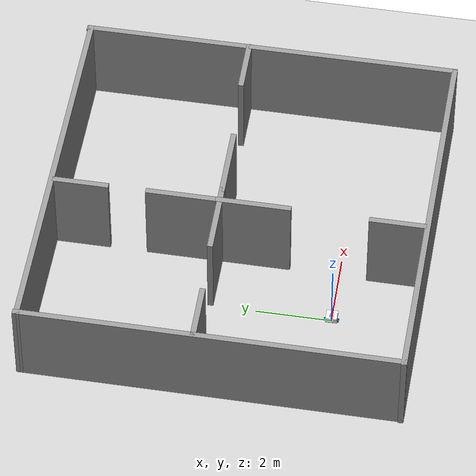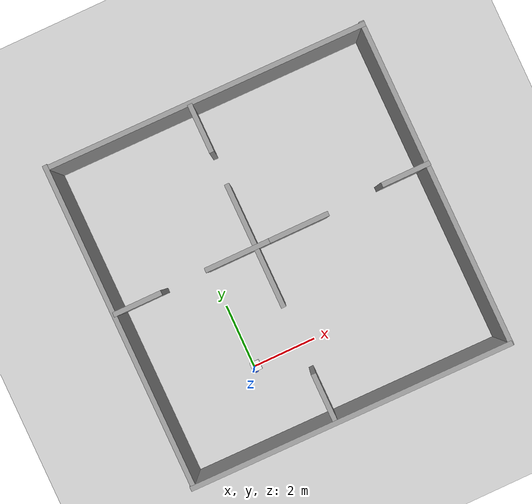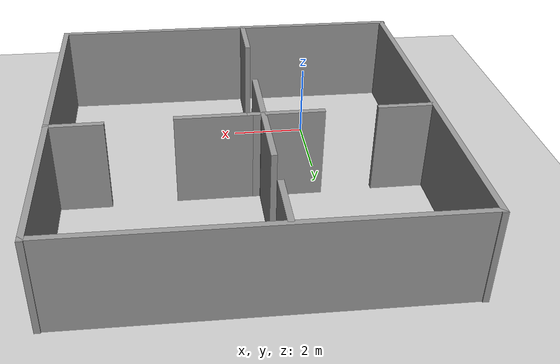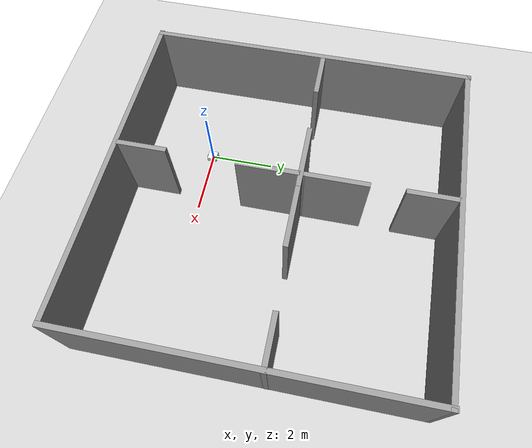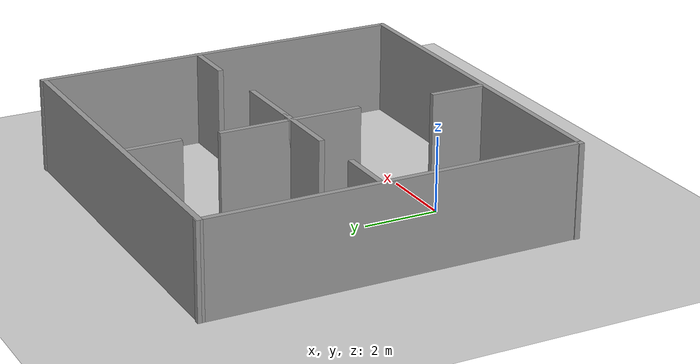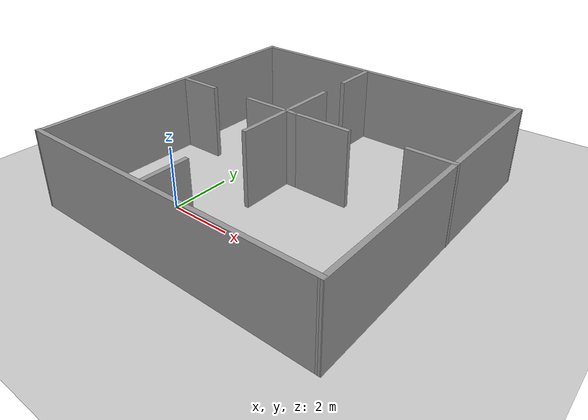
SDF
<sdf version="1.7">
 <world name="default">
  <light name="sun" type="directional">
   <pose>0 0 10 0 -0 0</pose>
   <diffuse>0.8 0.8 0.8 1</diffuse>
   <specular>0.2 0.2 0.2 1</specular>
   <attenuation>
    <range>1000</range>
    <constant>0.9</constant>
    <linear>0.01</linear>
    <quadratic>0.001</quadratic>
   </attenuation>
   <direction>-0.5 0.1 -0.9</direction>
   <spot><inner_angle>0</inner_angle><outer_angle>0</outer_angle><falloff>0</falloff></spot>
  </light>
  <model name="ground_plane">
   <static>1</static>
   <link name="link">
    <collision name="collision">
     <geometry><plane><normal>0 0 1</normal><size>100 100</size></plane></geometry>
     <surface><friction><ode><mu>100</mu><mu2>50</mu2></ode></friction></surface>
    </collision>
    <visual name="visual">
     <cast_shadows>0</cast_shadows>
     <geometry><plane><normal>0 0 1</normal><size>100 100</size></plane></geometry>
     <material>
      <script><uri>file://media/materials/scripts/gazebo.material</uri><name>Gazebo/Grey</name></script>
     </material>
    </visual>
   </link>
  </model>
  <gravity>0 0 -9.8</gravity>
  <magnetic_field>6e-06 2.3e-05 -4.2e-05</magnetic_field>
  <atmosphere type="adiabatic"/>
  <physics type="ode">
   <max_step_size>0.001</max_step_size>
   <real_time_factor>1</real_time_factor>
   <real_time_update_rate>1000</real_time_update_rate>
  </physics>
  <scene><ambient>0.4 0.4 0.4 1</ambient><background>0.7 0.7 0.7 1</background><shadows>1</shadows></scene>
  <audio><device>default</device></audio>
  <spherical_coordinates>
   <surface_model>EARTH_WGS84</surface_model>
   <latitude_deg>0</latitude_deg>
   <longitude_deg>0</longitude_deg>
   <elevation>0</elevation>
   <heading_deg>0</heading_deg>
  </spherical_coordinates>
  <model name="robot_dd">
   <link name="base_link">
    <inertial>
     <pose>0.055714 0 0.078571 0 -0 0</pose>
     <mass>0.7</mass>
     <inertia>
      <ixx>0.0064169</ixx>
      <ixy>0</ixy>
      <ixz>0.00118929</ixz>
      <iyy>0.00745405</iyy>
      <iyz>0</iyz>
      <izz>0.00876214</izz>
     </inertia>
    </inertial>
    <collision name="base_link_fixed_joint_lump__chassis_collision">
     <pose>0.05 0 0.075 0 -0 0</pose>
     <geometry><box><size>0.3 0.3 0.15</size></box></geometry>
    </collision>
    <collision name="base_link_fixed_joint_lump__caster_wheel_collision_1">
     <pose>0.14 0 0 0 -0 0</pose>
     <geometry><sphere><radius>0.05</radius></sphere></geometry>
     <surface><friction><ode><mu>0.001</mu><mu2>0.001</mu2></ode></friction></surface>
    </collision>
    <collision name="base_link_fixed_joint_lump__laser_frame_collision_2">
     <pose>0 0 0.175 0 -0 0</pose>
     <geometry><cylinder><length>0.04</length><radius>0.05</radius></cylinder></geometry>
    </collision>
    <visual name="base_link_fixed_joint_lump__chassis_visual">
     <pose>0.05 0 0.075 0 -0 0</pose>
     <geometry><box><size>0.3 0.3 0.15</size></box></geometry>
     <material>
      <script><name>Gazebo/White</name><uri>file://media/materials/scripts/gazebo.material</uri></script>
     </material>
    </visual>
    <visual name="base_link_fixed_joint_lump__caster_wheel_visual_1">
     <pose>0.14 0 0 0 -0 0</pose>
     <geometry><sphere><radius>0.05</radius></sphere></geometry>
     <material>
      <script><name>Gazebo/Black</name><uri>file://media/materials/scripts/gazebo.material</uri></script>
     </material>
    </visual>
    <visual name="base_link_fixed_joint_lump__laser_frame_visual_2">
     <pose>0 0 0.175 0 -0 0</pose>
     <geometry><cylinder><length>0.04</length><radius>0.05</radius></cylinder></geometry>
     <material>
      <script><name>Gazebo/Red</name><uri>file://media/materials/scripts/gazebo.material</uri></script>
     </material>
    </visual>
    <sensor name="laser" type="ray">
     <visualize>1</visualize>
     <update_rate>10</update_rate>
     <ray>
      <scan>
       <horizontal>
        <samples>360</samples>
        <min_angle>-3.14</min_angle>
        <max_angle>3.14</max_angle>
        <resolution>1</resolution>
       </horizontal>
       <vertical><samples>1</samples><min_angle>0</min_angle><max_angle>0</max_angle></vertical>
      </scan>
      <range><min>0.3</min><max>12</max></range>
     </ray>
     <plugin name="laser_controller" filename="libgazebo_ros_ray_sensor.so">
      <ros><argument>~/out:=scan</argument></ros>
      <output_type>sensor_msgs/LaserScan</output_type>
      <frame_name>laser_frame</frame_name>
     </plugin>
     <pose>0 0 0.175 0 -0 0</pose>
    </sensor>
   </link>
   <joint name="left_wheel_joint" type="revolute">
    <pose relative_to="base_link">0 0.175 0 -1.5708 0 0</pose>
    <parent>base_link</parent>
    <child>left_wheel</child>
    <axis>
     <xyz>0 0 1</xyz>
     <limit><lower>-1e+16</lower><upper>1e+16</upper></limit>
     <dynamics><spring_reference>0</spring_reference><spring_stiffness>0</spring_stiffness></dynamics>
    </axis>
   </joint>
   <link name="left_wheel">
    <pose relative_to="left_wheel_joint">0 0 0 0 -0 0</pose>
    <inertial>
     <mass>0.1</mass>
     <inertia>
      <ixx>7.58333e-05</ixx>
      <ixy>0</ixy>
      <ixz>0</ixz>
      <iyy>7.58333e-05</iyy>
      <iyz>0</iyz>
      <izz>0.000125</izz>
     </inertia>
    </inertial>
    <collision name="left_wheel_collision">
     <geometry><cylinder><length>0.04</length><radius>0.05</radius></cylinder></geometry>
    </collision>
    <visual name="left_wheel_visual">
     <geometry><cylinder><length>0.04</length><radius>0.05</radius></cylinder></geometry>
     <material>
      <script><name>Gazebo/Blue</name><uri>file://media/materials/scripts/gazebo.material</uri></script>
     </material>
    </visual>
   </link>
   <joint name="right_wheel_joint" type="revolute">
    <pose relative_to="base_link">0 -0.175 0 1.5708 -0 0</pose>
    <parent>base_link</parent>
    <child>right_wheel</child>
    <axis>
     <xyz>0 0 -1</xyz>
     <limit><lower>-1e+16</lower><upper>1e+16</upper></limit>
     <dynamics><spring_reference>0</spring_reference><spring_stiffness>0</spring_stiffness></dynamics>
    </axis>
   </joint>
   <link name="right_wheel">
    <pose relative_to="right_wheel_joint">0 0 0 0 -0 0</pose>
    <inertial>
     <mass>0.1</mass>
     <inertia>
      <ixx>7.58333e-05</ixx>
      <ixy>0</ixy>
      <ixz>0</ixz>
      <iyy>7.58333e-05</iyy>
      <iyz>0</iyz>
      <izz>0.000125</izz>
     </inertia>
    </inertial>
    <collision name="right_wheel_collision">
     <geometry><cylinder><length>0.04</length><radius>0.05</radius></cylinder></geometry>
    </collision>
    <visual name="right_wheel_visual">
     <geometry><cylinder><length>0.04</length><radius>0.05</radius></cylinder></geometry>
     <material>
      <script><name>Gazebo/Blue</name><uri>file://media/materials/scripts/gazebo.material</uri></script>
     </material>
    </visual>
   </link>
   <static>0</static>
   <plugin name="gazebo_ros2_control" filename="libgazebo_ros2_control.so">
    <parameters>/root/ws/install/robot_dd/share/robot_dd/config/my_controllers.yaml</parameters>
   </plugin>
   <pose>0.000922 1.3e-05 0.050001 0 5e-06 0.000557</pose>
  </model>
  <model name="custom_house_4room">
   <pose>2.04259 2.7334 0 0 -0 0</pose>
   <link name="Wall_0">
    <collision name="Wall_0_Collision">
     <geometry><box><size>10.0002 0.15 2.5</size></box></geometry>
     <pose>0 0 1.25 0 -0 0</pose>
    </collision>
    <visual name="Wall_0_Visual">
     <pose>0 0 1.25 0 -0 0</pose>
     <geometry><box><size>10.0002 0.15 2.5</size></box></geometry>
     <material>
      <script><uri>file://media/materials/scripts/gazebo.material</uri><name>Gazebo/Grey</name></script>
      <ambient>1 1 1 1</ambient>
     </material>
     <meta><layer>0</layer></meta>
    </visual>
    <pose>-0.012526 -4.98593 0 0 -0 3.13455</pose>
   </link>
   <link name="Wall_16">
    <collision name="Wall_16_Collision">
     <geometry><box><size>1.5 0.15 2.5</size></box></geometry>
     <pose>0 0 1.25 0 -0 0</pose>
    </collision>
    <visual name="Wall_16_Visual">
     <pose>0 0 1.25 0 -0 0</pose>
     <geometry><box><size>1.5 0.15 2.5</size></box></geometry>
     <material>
      <script><uri>file://media/materials/scripts/gazebo.material</uri><name>Gazebo/Grey</name></script>
      <ambient>1 1 1 1</ambient>
     </material>
     <meta><layer>0</layer></meta>
    </visual>
    <pose>-4.17215 0.438173 0 0 -0 0</pose>
   </link>
   <link name="Wall_19">
    <collision name="Wall_19_Collision">
     <geometry><box><size>2 0.15 2.5</size></box></geometry>
     <pose>0 0 1.25 0 -0 0</pose>
    </collision>
    <visual name="Wall_19_Visual">
     <pose>0 0 1.25 0 -0 0</pose>
     <geometry><box><size>2 0.15 2.5</size></box></geometry>
     <material>
      <script><uri>file://media/materials/scripts/gazebo.material</uri><name>Gazebo/Grey</name></script>
      <ambient>1 1 1 1</ambient>
     </material>
     <meta><layer>0</layer></meta>
    </visual>
    <pose>-1.04223 0.4838 0 0 -0 3.14159</pose>
   </link>
   <link name="Wall_23">
    <collision name="Wall_23_Collision">
     <geometry><box><size>2 0.15 2.5</size></box></geometry>
     <pose>0 0 1.25 0 -0 0</pose>
    </collision>
    <visual name="Wall_23_Visual">
     <pose>0 0 1.25 0 -0 0</pose>
     <geometry><box><size>2 0.15 2.5</size></box></geometry>
     <material>
      <script><uri>file://media/materials/scripts/gazebo.material</uri><name>Gazebo/Grey</name></script>
      <ambient>1 1 1 1</ambient>
     </material>
     <meta><layer>0</layer></meta>
    </visual>
    <pose>0.807769 0.4838 0 0 -0 0</pose>
   </link>
   <link name="Wall_25">
    <collision name="Wall_25_Collision">
     <geometry><box><size>1.5 0.15 2.5</size></box></geometry>
     <pose>0 0 1.25 0 -0 0</pose>
    </collision>
    <visual name="Wall_25_Visual">
     <pose>0 0 1.25 0 -0 0</pose>
     <geometry><box><size>1.5 0.15 2.5</size></box></geometry>
     <material>
      <script><uri>file://media/materials/scripts/gazebo.material</uri><name>Gazebo/Grey</name></script>
      <ambient>1 1 1 1</ambient>
     </material>
     <meta><layer>0</layer></meta>
    </visual>
    <pose>4.26305 0.573743 0 0 -0 3.14159</pose>
   </link>
   <link name="Wall_27">
    <collision name="Wall_27_Collision">
     <geometry><box><size>1.5 0.15 2.5</size></box></geometry>
     <pose>0 0 1.25 0 -0 0</pose>
    </collision>
    <visual name="Wall_27_Visual">
     <pose>0 0 1.25 0 -0 0</pose>
     <geometry><box><size>1.5 0.15 2.5</size></box></geometry>
     <material>
      <script><uri>file://media/materials/scripts/gazebo.material</uri><name>Gazebo/Grey</name></script>
      <ambient>1 1 1 1</ambient>
     </material>
     <meta><layer>0</layer></meta>
    </visual>
    <pose>-0.461836 4.18649 0 0 -0 -1.5708</pose>
   </link>
   <link name="Wall_33">
    <collision name="Wall_33_Collision">
     <geometry><box><size>2 0.15 2.5</size></box></geometry>
     <pose>0 0 1.25 0 -0 0</pose>
    </collision>
    <visual name="Wall_33_Visual">
     <pose>0 0 1.25 0 -0 0</pose>
     <geometry><box><size>2 0.15 2.5</size></box></geometry>
     <material>
      <script><uri>file://media/materials/scripts/gazebo.material</uri><name>Gazebo/Grey</name></script>
      <ambient>1 1 1 1</ambient>
     </material>
     <meta><layer>0</layer></meta>
    </visual>
    <pose>-0.461836 1.452 0 0 -0 1.5708</pose>
   </link>
   <link name="Wall_35">
    <collision name="Wall_35_Collision">
     <geometry><box><size>2 0.15 2.5</size></box></geometry>
     <pose>0 0 1.25 0 -0 0</pose>
    </collision>
    <visual name="Wall_35_Visual">
     <pose>0 0 1.25 0 -0 0</pose>
     <geometry><box><size>2 0.15 2.5</size></box></geometry>
     <material>
      <script><uri>file://media/materials/scripts/gazebo.material</uri><name>Gazebo/Grey</name></script>
      <ambient>1 1 1 1</ambient>
     </material>
     <meta><layer>0</layer></meta>
    </visual>
    <pose>-0.461836 -0.397998 0 0 -0 -1.5708</pose>
   </link>
   <link name="Wall_38">
    <collision name="Wall_38_Collision">
     <geometry><box><size>1.5 0.15 2.5</size></box></geometry>
     <pose>0 0 1.25 0 -0 0</pose>
    </collision>
    <visual name="Wall_38_Visual">
     <pose>0 0 1.25 0 -0 0</pose>
     <geometry><box><size>1.5 0.15 2.5</size></box></geometry>
     <material>
      <script><uri>file://media/materials/scripts/gazebo.material</uri><name>Gazebo/Grey</name></script>
      <ambient>1 1 1 1</ambient>
     </material>
     <meta><layer>0</layer></meta>
    </visual>
    <pose>-0.493849 -4.20049 0 0 -0 1.5708</pose>
   </link>
   <link name="Wall_4">
    <collision name="Wall_4_Collision">
     <geometry><box><size>10.1224 0.15 2.5</size></box></geometry>
     <pose>0 0 1.25 0 -0 0</pose>
    </collision>
    <visual name="Wall_4_Visual">
     <pose>0 0 1.25 0 -0 0</pose>
     <geometry><box><size>10.1224 0.15 2.5</size></box></geometry>
     <material>
      <script><uri>file://media/materials/scripts/gazebo.material</uri><name>Gazebo/Grey</name></script>
      <ambient>1 1 1 1</ambient>
     </material>
     <meta><layer>0</layer></meta>
    </visual>
    <pose>-4.90902 0.034945 0 0 -0 1.57041</pose>
   </link>
   <link name="Wall_6">
    <collision name="Wall_6_Collision">
     <geometry><box><size>9.98504 0.15 2.5</size></box></geometry>
     <pose>0 0 1.25 0 -0 0</pose>
    </collision>
    <visual name="Wall_6_Visual">
     <pose>0 0 1.25 0 -0 0</pose>
     <geometry><box><size>9.98504 0.15 2.5</size></box></geometry>
     <material>
      <script><uri>file://media/materials/scripts/gazebo.material</uri><name>Gazebo/Grey</name></script>
      <ambient>1 1 1 1</ambient>
     </material>
     <meta><layer>0</layer></meta>
    </visual>
    <pose>0.010287 4.95584 0 0 -0 -0.007056</pose>
   </link>
   <link name="Wall_8">
    <collision name="Wall_8_Collision">
     <geometry><box><size>10.1224 0.15 2.5</size></box></geometry>
     <pose>0 0 1.25 0 -0 0</pose>
    </collision>
    <visual name="Wall_8_Visual">
     <pose>0 0 1.25 0 -0 0</pose>
     <geometry><box><size>10.1224 0.15 2.5</size></box></geometry>
     <material>
      <script><uri>file://media/materials/scripts/gazebo.material</uri><name>Gazebo/Grey</name></script>
      <ambient>1 1 1 1</ambient>
     </material>
     <meta><layer>0</layer></meta>
    </visual>
    <pose>4.93164 -0.034447 0 0 -0 -1.57</pose>
   </link>
   <static>1</static>
  </model>
 </world>
</sdf>
